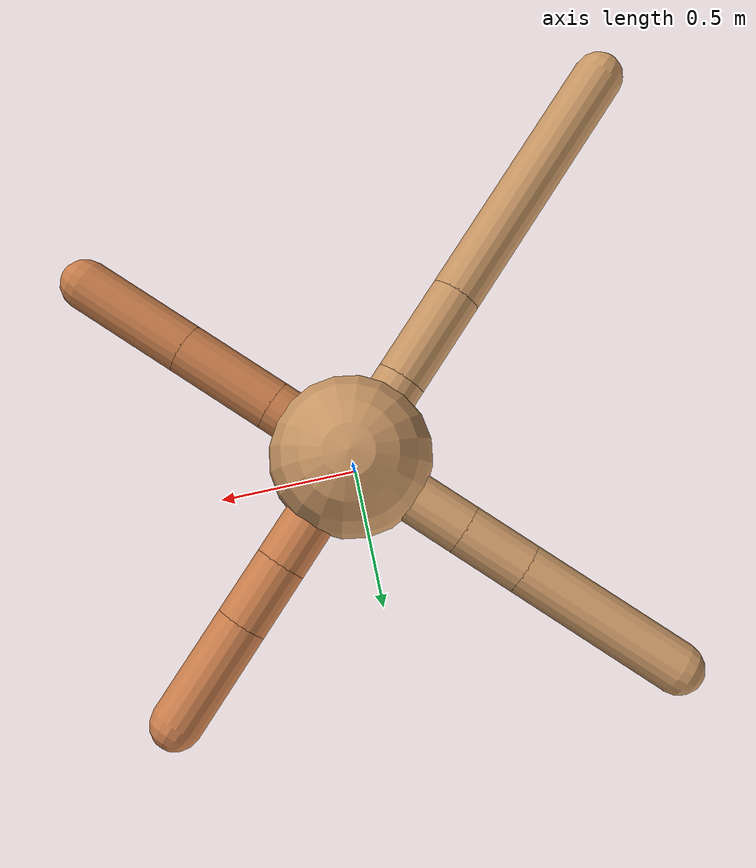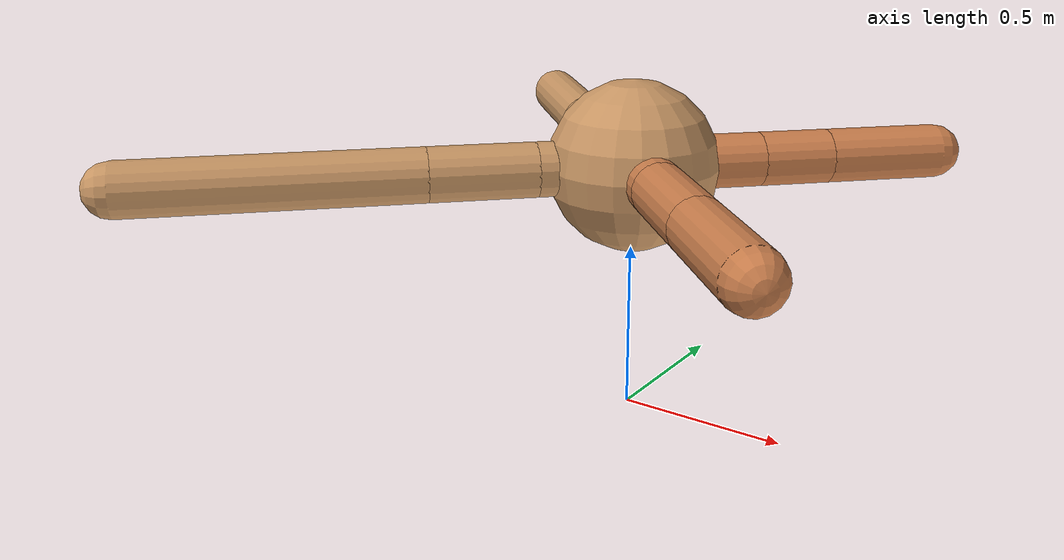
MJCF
<mujoco model="ant">
  <compiler angle="degree" coordinate="local" inertiafromgeom="true" />
  <option integrator="RK4" timestep="0.01" />
  <custom>
    <numeric data="0.0 0.0 0.55 1.0 0.0 0.0 0.0 0.0 1.0 0.0 -1.0 0.0 -1.0 0.0 1.0" name="init_qpos" />
  </custom>
  <default>
    <joint armature="1" damping="1" limited="true" />
    <geom conaffinity="0" condim="3" density="5.0" friction="1.5 0.1 0.1" margin="0.01" rgba="0.8 0.6 0.4 1" />
  </default>
  <worldbody>
    <body name="torso" pos="0 0 0.75">
      <geom name="torso_geom" pos="0 0 0" size="0.25" type="sphere" />

      <body name="front_left_leg" pos="0 0 0">
        <geom fromto="0.0 0.0 0.0 0.270907129018828 0.270907129018828 0.0" name="aux_1_geom" size="0.08" type="capsule" rgba=".8 .5 .3 1" />
        <body name="aux_1" pos="0.270907129018828 0.270907129018828 0.0">
          <joint axis="0 0 1" name="hip_1" pos="0.0 0.0 0.0" range="-40 40" type="hinge" />
          <geom fromto="0.0 0.0 0.0 0.14836342239421446 0.14836342239421446 0.0" name="left_leg_geom" size="0.08" type="capsule" rgba=".8 .5 .3 1" />
          <body pos="0.14836342239421446 0.14836342239421446 0.0" name="front_left_foot">
            <joint axis="-1 1 0" name="ankle_1" pos="0.0 0.0 0.0" range="30 100" type="hinge" />
            <geom fromto="0.0 0.0 0.0 0.24356597925520834 0.24356597925520834 0.0" name="left_ankle_geom" size="0.08" type="capsule" rgba=".8 .5 .3 1" />
          </body>
        </body>
      </body>
      <body name="front_right_leg" pos="0 0 0">
        <geom fromto="0.0 0.0 0.0 -0.28715242005297564 0.28715242005297564 0.0" name="aux_2_geom" size="0.08" type="capsule" />
        <body name="aux_2" pos="-0.28715242005297564 0.28715242005297564 0.0">
          <joint axis="0 0 1" name="hip_2" pos="0.0 0.0 0.0" range="-40 40" type="hinge" />
          <geom fromto="0.0 0.0 0.0 -0.14999822408379201 0.14999822408379201 0.0" name="right_leg_geom" size="0.08" type="capsule" />
          <body pos="-0.14999822408379201 0.14999822408379201 0.0" name="front_right_foot">
            <joint axis="1 1 0" name="ankle_2" pos="0.0 0.0 0.0" range="-100 -30" type="hinge" />
            <geom fromto="0.0 0.0 0.0 -0.3776711393784089 0.3776711393784089 0.0" name="right_ankle_geom" size="0.08" type="capsule" />
          </body>
        </body>
      </body>
      <body name="left_back_leg" pos="0 0 0">
        <geom fromto="0.0 0.0 0.0 -0.2 -0.2 0.0" name="aux_3_geom" size="0.08" type="capsule" />
        <body name="aux_3" pos="-0.2 -0.2 0.0">
          <joint axis="0 0 1" name="hip_3" pos="0.0 0.0 0.0" range="-40 40" type="hinge" />
          <geom fromto="0.0 0.0 0.0 -0.22023723729874095 -0.22023723729874095 0.0" name="back_leg_geom" size="0.08" type="capsule" />
          <body pos="-0.22023723729874095 -0.22023723729874095 0.0" name="left_back_foot">
            <joint axis="-1 1 0" name="ankle_3" pos="0.0 0.0 0.0" range="-100 -30" type="hinge" />
            <geom fromto="0.0 0.0 0.0 -0.5952652236966587 -0.5952652236966587 0.0" name="third_ankle_geom" size="0.08" type="capsule" />
          </body>
        </body>
      </body>
      <body name="right_back_leg" pos="0 0 0">
        <geom fromto="0.0 0.0 0.0 0.2 -0.2 0.0" name="aux_4_geom" size="0.08" type="capsule" rgba=".8 .5 .3 1" />
        <body name="aux_4" pos="0.2 -0.2 0.0">
          <joint axis="0 0 1" name="hip_4" pos="0.0 0.0 0.0" range="-40 40" type="hinge" />
          <geom fromto="0.0 0.0 0.0 0.2278444164659185 -0.2278444164659185 0.0" name="rightback_leg_geom" size="0.08" type="capsule" rgba=".8 .5 .3 1" />
          <body pos="0.2278444164659185 -0.2278444164659185 0.0" name="right_back_foot">
            <joint axis="1 1 0" name="ankle_4" pos="0.0 0.0 0.0" range="30 100" type="hinge" />
            <geom fromto="0.0 0.0 0.0 0.2632593656003212 -0.2632593656003212 0.0" name="fourth_ankle_geom" size="0.08" type="capsule" rgba=".8 .5 .3 1" />
          </body>
        </body>
      </body>
    </body>
  </worldbody>
  <actuator>
    <motor ctrllimited="true" ctrlrange="-1.0 1.0" joint="hip_4" gear="150" />
    <motor ctrllimited="true" ctrlrange="-1.0 1.0" joint="ankle_4" gear="150" />
    <motor ctrllimited="true" ctrlrange="-1.0 1.0" joint="hip_1" gear="150" />
    <motor ctrllimited="true" ctrlrange="-1.0 1.0" joint="ankle_1" gear="150" />
    <motor ctrllimited="true" ctrlrange="-1.0 1.0" joint="hip_2" gear="150" />
    <motor ctrllimited="true" ctrlrange="-1.0 1.0" joint="ankle_2" gear="150" />
    <motor ctrllimited="true" ctrlrange="-1.0 1.0" joint="hip_3" gear="150" />
    <motor ctrllimited="true" ctrlrange="-1.0 1.0" joint="ankle_3" gear="150" />
  </actuator>
</mujoco>
